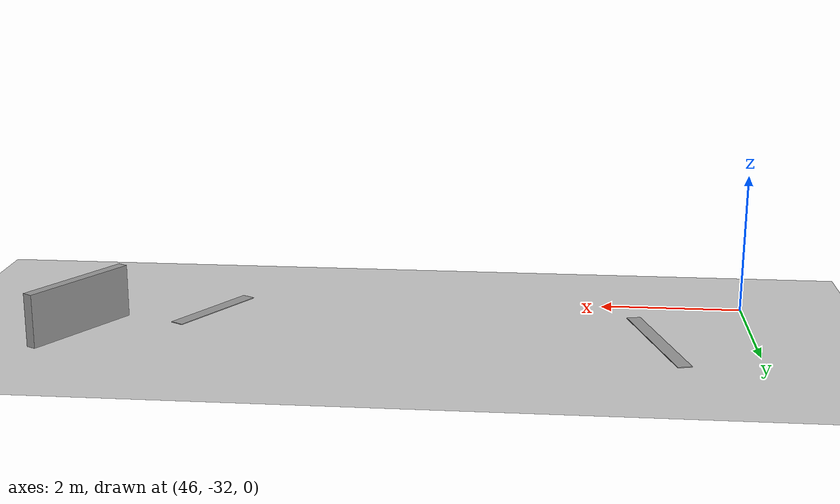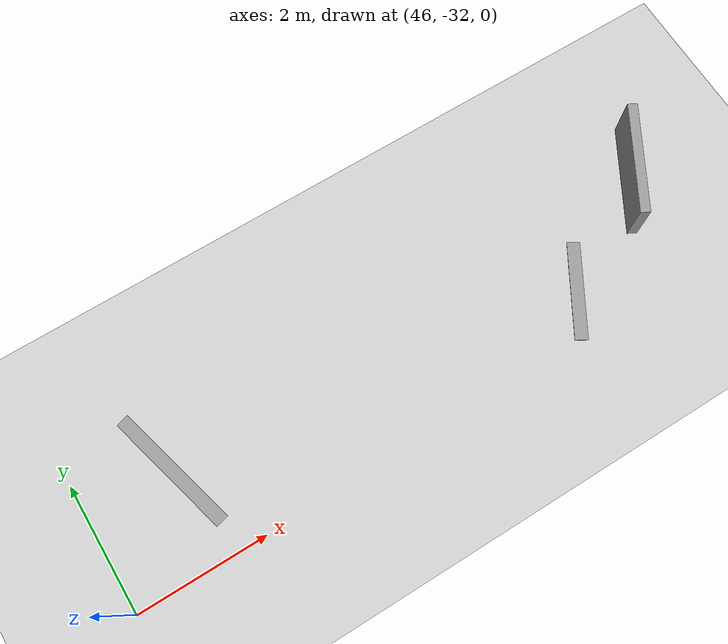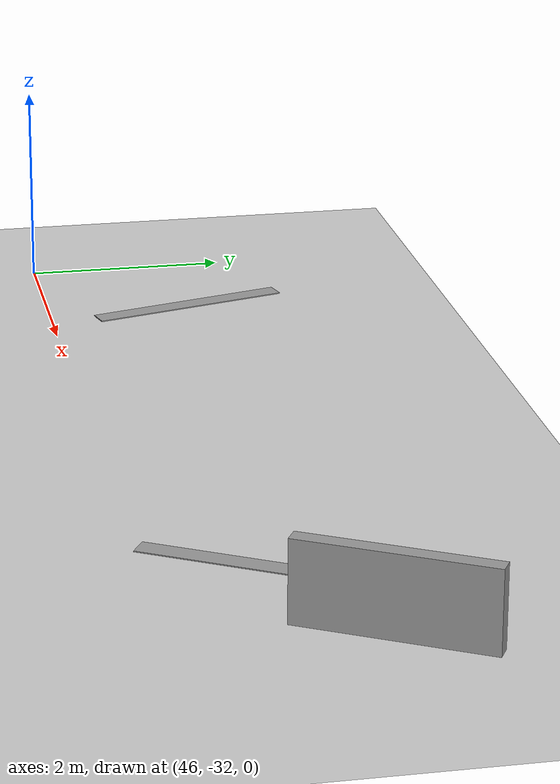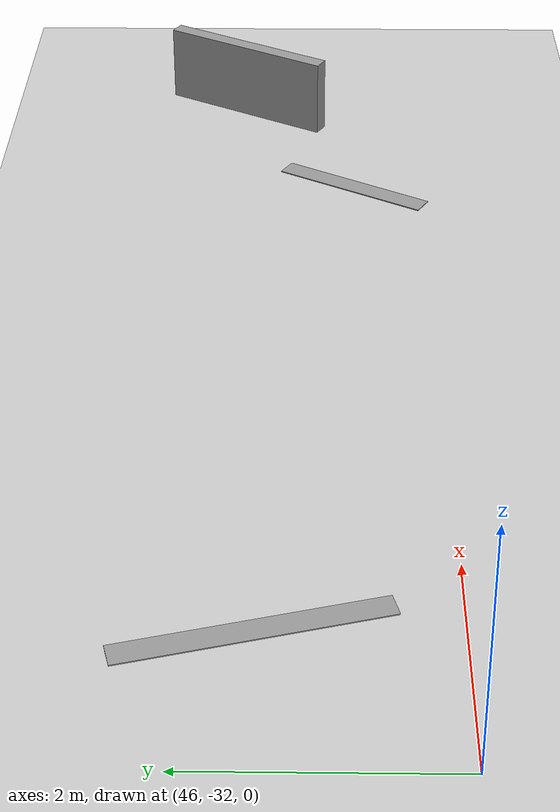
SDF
<sdf version="1.6">
 <world name="default">
  <model name="ground_plane">
   <static>1</static>
   <link name="link">
    <collision name="collision">
     <geometry><plane><normal>0 0 1</normal><size>100 100</size></plane></geometry>
     <surface>
      <contact><collide_bitmask>65535</collide_bitmask></contact>
      <friction><ode><mu>100</mu><mu2>50</mu2></ode></friction>
     </surface>
    </collision>
    <visual name="visual">
     <cast_shadows>0</cast_shadows>
     <geometry><plane><normal>0 0 1</normal><size>100 100</size></plane></geometry>
     <material>
      <script><uri>file://media/materials/scripts/gazebo.material</uri><name>Gazebo/Grey</name></script>
     </material>
    </visual>
   </link>
  </model>
  <model name="GercekDuvarSeritKoyu1">
   <link name="Wall_231">
    <pose>-24.4659 -4.60059 0 0 -0 2.61811</pose>
    <inertial>
     <mass>1</mass>
     <inertia><ixx>1</ixx><ixy>0</ixy><ixz>0</ixz><iyy>1</iyy><iyz>0</iyz><izz>1</izz></inertia>
    </inertial>
    <visual name="Wall_231_Visual">
     <pose>0 0 0.375 0 -0 0</pose>
     <geometry><box><size>1.75 0.15 0.75</size></box></geometry>
     <material>
      <script><uri>file://media/materials/scripts/gazebo.material</uri><name>Gazebo/Grey</name></script>
      <ambient>0.5 0.5 0.5 1</ambient>
      <shader type="pixel"><normal_map>__default__</normal_map></shader>
      <diffuse>0.7 0.7 0.7 1</diffuse>
      <specular>0.01 0.01 0.01 1</specular>
      <emissive>0 0 0 1</emissive>
     </material>
     <meta><layer>0</layer></meta>
    </visual>
    <collision name="Wall_231_Collision">
     <pose>0 0 0.375 0 -0 0</pose>
     <geometry><box><size>1.75 0.15 0.75</size></box></geometry>
     <surface>
      <friction>
       <ode><mu>1</mu><mu2>1</mu2><fdir1>0 0 0</fdir1><slip1>0</slip1><slip2>0</slip2></ode>
       <torsional>
        <coefficient>1</coefficient>
        <patch_radius>0</patch_radius>
        <surface_radius>0</surface_radius>
        <use_patch_radius>1</use_patch_radius>
        <ode><slip>0</slip></ode>
       </torsional>
      </friction>
      <bounce><restitution_coefficient>0</restitution_coefficient><threshold>1e+06</threshold></bounce>
      <contact>
       <collide_without_contact>0</collide_without_contact>
       <collide_without_contact_bitmask>1</collide_without_contact_bitmask>
       <collide_bitmask>1</collide_bitmask>
       <ode>
        <soft_cfm>0</soft_cfm>
        <soft_erp>0.2</soft_erp>
        <kp>1e+13</kp>
        <kd>1</kd>
        <max_vel>0.01</max_vel>
        <min_depth>0</min_depth>
       </ode>
       <bullet>
        <split_impulse>1</split_impulse>
        <split_impulse_penetration_threshold>-0.01</split_impulse_penetration_threshold>
        <soft_cfm>0</soft_cfm>
        <soft_erp>0.2</soft_erp>
        <kp>1e+13</kp>
        <kd>1</kd>
       </bullet>
      </contact>
     </surface>
    </collision>
   </link>
   <link name="Wall_405">
    <pose>-24.1904 -12.6016 0 0 0 -2.88022</pose>
    <visual name="Wall_405_Visual">
     <pose>0 0 0.005 0 -0 0</pose>
     <geometry><box><size>2.04958 0.2 0.01</size></box></geometry>
     <material>
      <script><uri>file://media/materials/scripts/gazebo.material</uri><name>Gazebo/Grey</name></script>
      <ambient>1 1 1 1</ambient>
      <shader type="pixel"/>
     </material>
     <meta><layer>0</layer></meta>
    </visual>
    <collision name="Wall_405_Collision">
     <pose>0 0 0.005 0 -0 0</pose>
     <geometry><box><size>2.04958 0.2 0.01</size></box></geometry>
     <surface>
      <friction>
       <ode><mu>1</mu><mu2>1</mu2><fdir1>0 0 0</fdir1><slip1>0</slip1><slip2>0</slip2></ode>
       <torsional>
        <coefficient>1</coefficient>
        <patch_radius>0</patch_radius>
        <surface_radius>0</surface_radius>
        <use_patch_radius>1</use_patch_radius>
        <ode><slip>0</slip></ode>
       </torsional>
      </friction>
      <bounce><restitution_coefficient>0</restitution_coefficient><threshold>1e+06</threshold></bounce>
      <contact>
       <collide_without_contact>0</collide_without_contact>
       <collide_without_contact_bitmask>1</collide_without_contact_bitmask>
       <collide_bitmask>1</collide_bitmask>
       <ode>
        <soft_cfm>0</soft_cfm>
        <soft_erp>0.2</soft_erp>
        <kp>1e+13</kp>
        <kd>1</kd>
        <max_vel>0.01</max_vel>
        <min_depth>0</min_depth>
       </ode>
       <bullet>
        <split_impulse>1</split_impulse>
        <split_impulse_penetration_threshold>-0.01</split_impulse_penetration_threshold>
        <soft_cfm>0</soft_cfm>
        <soft_erp>0.2</soft_erp>
        <kp>1e+13</kp>
        <kd>1</kd>
       </bullet>
      </contact>
     </surface>
    </collision>
   </link>
   <link name="Wall_582">
    <pose>-23.3909 -6.26409 0 0 -0 2.6093</pose>
    <visual name="Wall_582_Visual">
     <pose>0 0 0.005 0 -0 0</pose>
     <geometry><box><size>1.53001 0.2 0.01</size></box></geometry>
     <material>
      <script><uri>file://media/materials/scripts/gazebo.material</uri><name>Gazebo/Grey</name></script>
      <ambient>1 1 1 1</ambient>
      <shader type="pixel"/>
     </material>
     <meta><layer>0</layer></meta>
    </visual>
    <collision name="Wall_582_Collision">
     <pose>0 0 0.005 0 -0 0</pose>
     <geometry><box><size>1.53001 0.2 0.01</size></box></geometry>
     <surface>
      <friction>
       <ode><mu>1</mu><mu2>1</mu2><fdir1>0 0 0</fdir1><slip1>0</slip1><slip2>0</slip2></ode>
       <torsional>
        <coefficient>1</coefficient>
        <patch_radius>0</patch_radius>
        <surface_radius>0</surface_radius>
        <use_patch_radius>1</use_patch_radius>
        <ode><slip>0</slip></ode>
       </torsional>
      </friction>
      <bounce><restitution_coefficient>0</restitution_coefficient><threshold>1e+06</threshold></bounce>
      <contact>
       <collide_without_contact>0</collide_without_contact>
       <collide_without_contact_bitmask>1</collide_without_contact_bitmask>
       <collide_bitmask>1</collide_bitmask>
       <ode>
        <soft_cfm>0</soft_cfm>
        <soft_erp>0.2</soft_erp>
        <kp>1e+13</kp>
        <kd>1</kd>
        <max_vel>0.01</max_vel>
        <min_depth>0</min_depth>
       </ode>
       <bullet>
        <split_impulse>1</split_impulse>
        <split_impulse_penetration_threshold>-0.01</split_impulse_penetration_threshold>
        <soft_cfm>0</soft_cfm>
        <soft_erp>0.2</soft_erp>
        <kp>1e+13</kp>
        <kd>1</kd>
       </bullet>
      </contact>
     </surface>
    </collision>
   </link>
   <static>1</static>
   <pose>59.9324 -54.7034 -0 0 0 -1.5695</pose>
  </model>
 </world>
</sdf>
